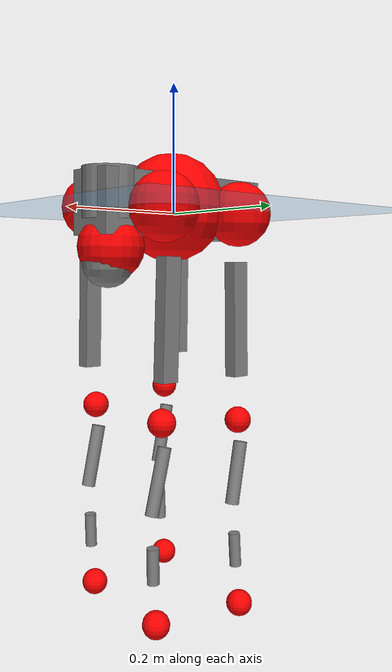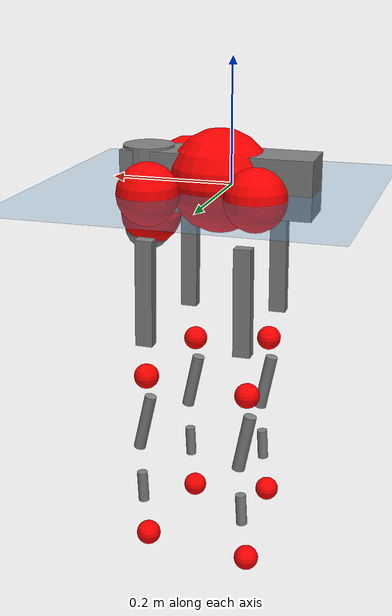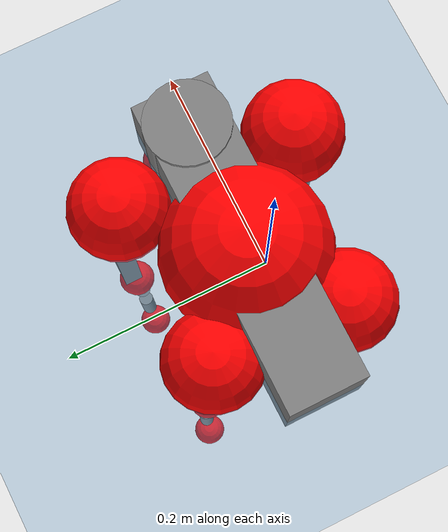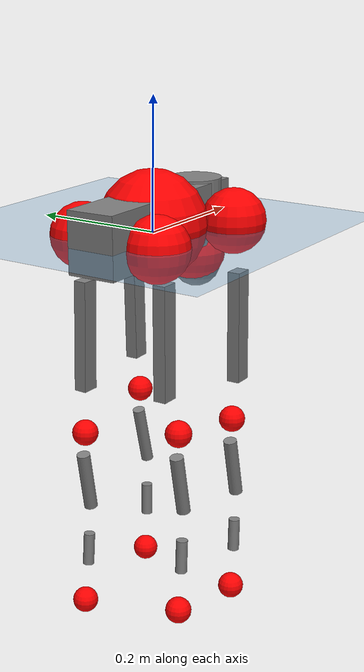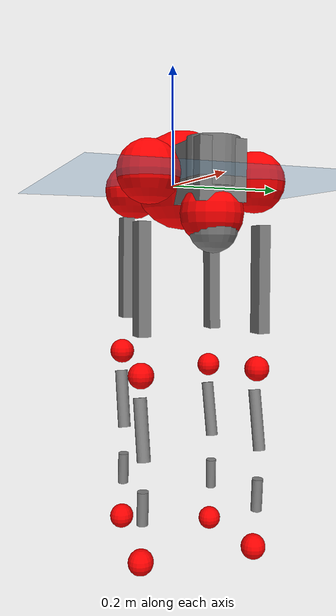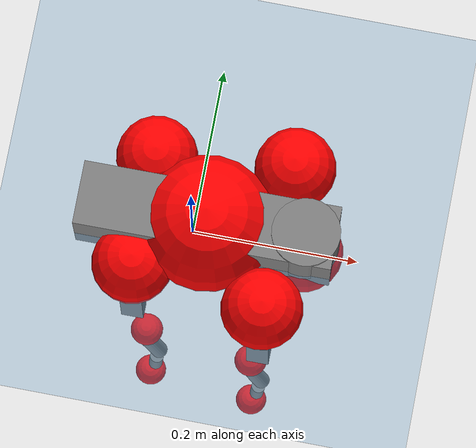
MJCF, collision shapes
<mujoco model="go2">
  <compiler angle="radian" assetdir="assets" balanceinertia="true" inertiafromgeom="false"/>

  <option timestep="0.005" density="1.2" viscosity="2e-05"/>

  <size nkey="1"/>

  <visual>
    <quality shadowsize="8192"/>
    <map shadowclip="0.5"/>
  </visual>

  <default>
    <default class="/">
      <geom contype="0" conaffinity="0" group="1" solref="-1000 -80"/>
      <site size="0.01 0.005 0.005" group="5"/>
      <general forcelimited="true" biastype="affine" gainprm="20" biasprm="0 -20 -0.5"/>
      <default class="go2">
        <joint armature="0.01" damping="0.01" frictionloss="0.2"/>
        <geom condim="1" margin="0.001"/>
        <default class="visual">
          <geom type="mesh" group="2"/>
        </default>
        <default class="collision">
          <geom group="3"/>
          <default class="foot">
            <geom size="0.022 0 0" condim="6" priority="1" friction="0.8 0.02 0.01" solimp="0.015 1 0.022"/>
          </default>
        </default>
        <default class="reward_collision_sphere">
          <geom group="5" rgba="1 0 0 1"/>
        </default>
      </default>
    </default>
  </default>

  <asset>
    <texture type="skybox" colorspace="auto" name="//unnamed_texture_0" builtin="gradient" rgb1="0.95 0.95 0.95" rgb2="0.95 0.95 0.95" width="100" height="600"/>
    <texture type="2d" colorspace="auto" name="texplane" builtin="checker" rgb1="0.345 0.575 0.748" rgb2="0.345 0.575 0.748" markrgb="1 1 1" width="512" height="512"/>
    <material name="MatPlane" class="/" texture="texplane" texuniform="true" texrepeat="2 2" specular="0.9"/>
    <material name="metal" class="/" rgba="0.9 0.95 0.95 1"/>
    <material name="black" class="/" rgba="0 0 0 1"/>
    <material name="white" class="/"/>
    <material name="gray" class="/" rgba="0.671705 0.692426 0.77427 1"/>
    <mesh name="base_0" class="/" file="base_0.obj"/>
    <mesh name="base_1" class="/" file="base_1.obj"/>
    <mesh name="base_2" class="/" file="base_2.obj"/>
    <mesh name="base_3" class="/" file="base_3.obj"/>
    <mesh name="base_4" class="/" file="base_4.obj"/>
    <mesh name="hip_0" class="/" file="hip_0.obj"/>
    <mesh name="hip_1" class="/" file="hip_1.obj"/>
    <mesh name="thigh_0" class="/" file="thigh_0.obj"/>
    <mesh name="thigh_1" class="/" file="thigh_1.obj"/>
    <mesh name="thigh_mirror_0" class="/" file="thigh_mirror_0.obj"/>
    <mesh name="thigh_mirror_1" class="/" file="thigh_mirror_1.obj"/>
    <mesh name="calf_0" class="/" file="calf_0.obj"/>
    <mesh name="calf_1" class="/" file="calf_1.obj"/>
    <mesh name="calf_mirror_0" class="/" file="calf_mirror_0.obj"/>
    <mesh name="calf_mirror_1" class="/" file="calf_mirror_1.obj"/>
    <mesh name="foot" class="/" file="foot.obj"/>
  </asset>

  <worldbody>
    <geom name="floor" class="/" size="100 100 0.125" type="plane" group="0" material="MatPlane"/>
    <light name="toplight_shadow" class="/" pos="0 0 5" dir="0.0990148 0.0990148 -0.990148" type="directional" ambient="0.04 0.04 0.04" diffuse="0.55 0.55 0.55" specular="0.12 0.12 0.12"/>
    <light name="toplight_fill" class="/" pos="0 0 5" dir="0.0990148 0.0990148 -0.990148" type="directional" castshadow="false" ambient="0.04 0.04 0.04" diffuse="0.3 0.3 0.3" specular="0.08 0.08 0.08"/>
    <body name="trunk" childclass="go2" pos="0.0158876 0.0116873 0.00776454" quat="0.999978 -0.0060063 -0.0019689 0.00198502">
      <inertial pos="0.025379 0.0029554 -0.00522369" quat="0.00623544 0.728333 -0.0322601 0.684436" mass="3.63489" diaginertia="0.00147862 0.0119134 0.110443"/>
      <joint name="//unnamed_joint_0" type="free" armature="0" damping="0" frictionloss="0"/>
      <geom name="//unnamed_geom_1" class="visual" material="black" mesh="base_0"/>
      <geom name="//unnamed_geom_2" class="visual" material="black" mesh="base_1"/>
      <geom name="//unnamed_geom_3" class="visual" material="black" mesh="base_2"/>
      <geom name="//unnamed_geom_4" class="visual" material="white" mesh="base_3"/>
      <geom name="//unnamed_geom_5" class="visual" material="gray" mesh="base_4"/>
      <geom name="trunk_1" class="collision" size="0.155365 0.038614 0.0470802" type="box"/>
      <geom name="trunk_2" class="collision" size="0.0412984 0.0371686" pos="0.118834 0 0.01402" type="cylinder"/>
      <geom name="trunk_3" class="collision" size="0.0388205" pos="0.12217 0 -0.0841197"/>
      <geom name="//unnamed_geom_9" class="reward_collision_sphere" size="0.0825968"/>
      <geom name="//unnamed_geom_10" class="reward_collision_sphere" size="0.0495581" pos="0.116749 0 -0.0630898"/>
      <site name="imu" pos="-0.0196962 -0.0369916 0.090138" size="0.00825968"/>
      <camera name="track" pos="0 -1.3179 0" quat="0.707107 0.707107 0 0" mode="trackcom"/>
      <camera name="ego_camera" pos="0.130092 0 0.0630898" quat="-0.5 -0.5 0.5 0.5"/>
      <body name="FL_hip" pos="0.0911655 0.0414486 -0.00785216" quat="0.999968 -0.00203782 -0.00759231 0.00112099">
        <inertial pos="0.0145722 0.0107632 0.00945393" quat="0.499166 0.493437 0.514505 0.492584" mass="0.329569" diaginertia="9.66566e-06 7.24802e-05 0.0018776"/>
        <joint name="FL_hip_joint" pos="0 0 0" axis="0.99976 0.0193389 0.0103178" stiffness="0.03579" range="-0.993918 1.32875" armature="0.00308431" damping="0.0636643" frictionloss="0.0977846"/>
        <geom name="//unnamed_geom_11" class="visual" material="metal" mesh="hip_0"/>
        <geom name="//unnamed_geom_12" class="visual" material="gray" mesh="hip_1"/>
        <geom name="//unnamed_geom_13" class="collision" size="0.0379945 0.0165194" pos="0 0.0527159 0" quat="0.707107 0.707107 0 0" type="cylinder"/>
        <geom name="//unnamed_geom_14" class="reward_collision_sphere" size="0.0495581" pos="0 0.0461264 0"/>
        <body name="FL_thigh" pos="-4.97919e-05 0.0586266 -0.00753456" quat="1 0.000490964 -0.00045795 0.000419358">
          <inertial pos="-0.0173975 -0.0179346 -0.060452" quat="0.832887 0.096016 -0.0228166 0.544573" mass="0.690449" diaginertia="7.73037e-05 0.000664621 0.00517031"/>
          <joint name="FL_thigh_joint" pos="0 0 0" axis="0.0381056 0.99904 -0.0216185" range="-1.30464 3.23839" armature="0.00334425" damping="0.0876506" frictionloss="0.0899816"/>
          <geom name="//unnamed_geom_15" class="visual" material="metal" mesh="thigh_0"/>
          <geom name="//unnamed_geom_16" class="visual" material="gray" mesh="thigh_1"/>
          <geom name="//unnamed_geom_17" class="collision" size="0.0879656 0.0101181 0.0140415" pos="0 0 -0.149312" quat="0.707107 0 0.707107 0" type="box"/>
          <body name="FL_calf" pos="0.000862016 -0.00529257 -0.295877" quat="0.999985 -0.00488388 0.000841128 -0.00243954">
            <inertial pos="-0.00763748 -0.00985827 -0.185918" quat="0.664943 0.0344902 0.0089737 0.746043" mass="0.126352" diaginertia="2.05695e-05 0.000162151 0.000330898"/>
            <joint name="FL_calf_joint" pos="0 0 0" axis="0.0219685 0.999629 -0.0161133" range="-2.66258 -0.563666" armature="0.0127629" damping="0" frictionloss="0.198601"/>
            <geom name="//unnamed_geom_18" class="visual" material="gray" mesh="calf_0"/>
            <geom name="//unnamed_geom_19" class="visual" material="black" mesh="calf_1"/>
            <geom name="FL_calf0" class="collision" size="0.00991162 0.0495581" pos="0.00333569 0 -0.0841197" quat="0.994493 0 -0.104807 0" type="cylinder"/>
            <geom name="//unnamed_geom_21" class="collision" size="0.00908565 0.026844" pos="0.00833922 0 -0.207495" quat="0.999688 0 0.0249974 0" type="cylinder"/>
            <geom name="//unnamed_geom_22" class="visual" pos="0 0 -0.298625" quat="1 0 0 0" material="black" mesh="foot"/>
            <geom name="FL_foot" class="foot" size="0.0143059" pos="-0.000833922 0 -0.298625"/>
            <geom name="//unnamed_geom_24" class="reward_collision_sphere" size="0.0206492"/>
            <geom name="//unnamed_geom_25" class="reward_collision_sphere" size="0.0206492" pos="-0.000833922 0 -0.298625"/>
            <site name="FL_foot" class="foot" pos="-0.000833922 0 -0.298625" size="0.00825968"/>
          </body>
        </body>
      </body>
      <body name="FR_hip" pos="0.0823739 -0.0444666 -0.000381838" quat="0.99999 -0.00153758 6.33775e-05 0.00408208">
        <inertial pos="-0.0151837 -0.00742092 -0.000914587" quat="0.493022 0.50437 0.508826 0.493595" mass="0.253343" diaginertia="1.00378e-05 6.75057e-05 0.00252262"/>
        <joint name="FR_hip_joint" pos="0 0 0" axis="0.999816 0.0189265 -0.00311843" stiffness="0.0454409" range="-1.24701 1.01767" armature="0.0151933" damping="0.0171365" frictionloss="0.03231"/>
        <geom name="//unnamed_geom_26" class="visual" pos="0 -6.47312e-09 -2.77645e-07" quat="4.63268e-05 1 0 0" material="metal" mesh="hip_0"/>
        <geom name="//unnamed_geom_27" class="visual" pos="0 -1.04937e-08 6.86723e-07" quat="4.63268e-05 1 0 0" material="gray" mesh="hip_1"/>
        <geom name="//unnamed_geom_28" class="collision" size="0.0379945 0.0165194" pos="0 -0.0527159 0" quat="0.707107 0.707107 0 0" type="cylinder"/>
        <geom name="//unnamed_geom_29" class="reward_collision_sphere" size="0.0495581" pos="0 -0.0461264 0"/>
        <body name="FR_thigh" pos="-0.00240676 -0.0561461 -0.0144769" quat="0.99997 0.00156959 -0.00448485 -0.00612857">
          <inertial pos="0.0104247 0.0313061 -0.0395111" quat="0.567955 -0.0177772 0.0794079 0.819027" mass="0.859243" diaginertia="8.09985e-05 0.000875522 0.00605382"/>
          <joint name="FR_thigh_joint" pos="0 0 0" axis="0.021634 -0.999741 -0.00700662" stiffness="0.0156627" range="-3.36006 1.72136" armature="0.00836564" damping="0.00650472" frictionloss="0.0972541"/>
          <geom name="//unnamed_geom_30" class="visual" material="metal" mesh="thigh_mirror_0"/>
          <geom name="//unnamed_geom_31" class="visual" material="gray" mesh="thigh_mirror_1"/>
          <geom name="//unnamed_geom_32" class="collision" size="0.0879656 0.0101181 0.0140415" pos="0 0 -0.149312" quat="0.707107 0 0.707107 0" type="box"/>
          <body name="FR_calf" pos="-0.0112446 0.00250424 -0.300454" quat="1 -1.567e-05 1.98342e-05 2.95213e-05">
            <inertial pos="-0.00683064 0.000275844 -0.192025" quat="0.690281 0.00425692 0.000644498 0.723529" mass="0.104543" diaginertia="1.29052e-05 0.000173923 0.000232668"/>
            <joint name="FR_calf_joint" pos="0 0 0" axis="-0.0505053 -0.99787 0.0412902" stiffness="0.0512746" range="0.837425 2.79375" armature="0.00715129" damping="0" frictionloss="0.116876"/>
            <geom name="//unnamed_geom_33" class="visual" material="gray" mesh="calf_mirror_0"/>
            <geom name="//unnamed_geom_34" class="visual" material="black" mesh="calf_mirror_1"/>
            <geom name="FR_calf0" class="collision" size="0.0107376 0.0495581" pos="0.00416961 0 -0.0841197" quat="0.995004 0 -0.0998334 0" type="cylinder"/>
            <geom name="//unnamed_geom_36" class="collision" size="0.00908565 0.026844" pos="0.00833922 0 -0.207495" quat="0.999688 0 0.0249974 0" type="cylinder"/>
            <geom name="//unnamed_geom_37" class="visual" pos="0 0 -0.298625" quat="1 0 0 0" material="black" mesh="foot"/>
            <geom name="FR_foot" class="foot" size="0.016714" pos="-0.000833922 0 -0.298625"/>
            <geom name="//unnamed_geom_39" class="reward_collision_sphere" size="0.0206492"/>
            <geom name="//unnamed_geom_40" class="reward_collision_sphere" size="0.0206492" pos="-0.000833922 0 -0.298625"/>
            <site name="FR_foot" class="foot" pos="-0.000833922 0 -0.298625" size="0.00825968"/>
          </body>
        </body>
      </body>
      <body name="RL_hip" pos="-0.0760275 0.0259557 -0.0101124" quat="0.999961 0.00615429 0.00170536 -0.00608665">
        <inertial pos="-0.0136737 0.00649455 -0.00343118" quat="0.504721 0.497351 0.499854 0.498041" mass="0.345508" diaginertia="1.0903e-05 6.09442e-05 0.00271035"/>
        <joint name="RL_hip_joint" pos="0 0 0" axis="-0.999643 -0.00810292 -0.0254605" range="-0.951969 0.969572" armature="0.00767279" damping="0" frictionloss="0.101883"/>
        <geom name="//unnamed_geom_41" class="visual" pos="8.58121e-09 0 1.68212e-06" quat="4.63268e-05 0 1 0" material="metal" mesh="hip_0"/>
        <geom name="//unnamed_geom_42" class="visual" pos="1.39112e-08 0 1.4918e-06" quat="4.63268e-05 0 1 0" material="gray" mesh="hip_1"/>
        <geom name="//unnamed_geom_43" class="collision" size="0.0379945 0.0165194" pos="0 0.0527159 0" quat="0.707107 0.707107 0 0" type="cylinder"/>
        <geom name="//unnamed_geom_44" class="reward_collision_sphere" size="0.0495581" pos="0 0.0461264 0"/>
        <body name="RL_thigh" pos="0.0152725 0.0546864 -0.0121176" quat="0.99997 0.0059454 0.00394725 -0.00293228">
          <inertial pos="3.9966e-05 -0.00990406 -0.0410746" quat="0.822475 0.155408 -0.0148841 0.546957" mass="0.754201" diaginertia="6.85217e-05 0.000835784 0.00431063"/>
          <joint name="RL_thigh_joint" pos="0 0 0" axis="-0.000154815 0.999998 -0.00203404" range="-0.441769 4.56004" armature="0.0123486" damping="0.0880474" frictionloss="0.224906"/>
          <geom name="//unnamed_geom_45" class="visual" material="metal" mesh="thigh_0"/>
          <geom name="//unnamed_geom_46" class="visual" material="gray" mesh="thigh_1"/>
          <geom name="//unnamed_geom_47" class="collision" size="0.0879656 0.0101181 0.0140415" pos="0 0 -0.149312" quat="0.707107 0 0.707107 0" type="box"/>
          <body name="RL_calf" pos="-0.00685478 -0.0044127 -0.307626" quat="1 -4.22209e-06 0.000312739 -0.000630401">
            <inertial pos="0.00202294 -1.12764e-06 -0.208342" quat="0.710666 0.00132454 -0.00464082 0.703513" mass="0.137031" diaginertia="1.87097e-05 0.000175421 0.00029394"/>
            <joint name="RL_calf_joint" pos="0 0 0" axis="0.00563013 0.999982 0.00190613" stiffness="0.0127388" range="-2.60469 -0.858892" armature="0.0123986" damping="0.0760608" frictionloss="0.17938"/>
            <geom name="//unnamed_geom_48" class="visual" material="gray" mesh="calf_0"/>
            <geom name="//unnamed_geom_49" class="visual" material="black" mesh="calf_1"/>
            <geom name="RL_calf0" class="collision" size="0.0107376 0.0495581" pos="0.00416961 0 -0.0841197" quat="0.995004 0 -0.0998334 0" type="cylinder"/>
            <geom name="//unnamed_geom_51" class="collision" size="0.00908565 0.026844" pos="0.00833922 0 -0.207495" quat="0.999688 0 0.0249974 0" type="cylinder"/>
            <geom name="//unnamed_geom_52" class="visual" pos="0 0 -0.298625" quat="1 0 0 0" material="black" mesh="foot"/>
            <geom name="RL_foot" class="foot" size="0.0102668" pos="-0.000833922 0 -0.298625"/>
            <geom name="//unnamed_geom_54" class="reward_collision_sphere" size="0.0206492"/>
            <geom name="//unnamed_geom_55" class="reward_collision_sphere" size="0.0206492" pos="-0.000833922 0 -0.298625"/>
            <site name="RL_foot" class="foot" pos="-0.000833922 0 -0.298625" size="0.00825968"/>
          </body>
        </body>
      </body>
      <body name="RR_hip" pos="-0.0802082 -0.0151647 -0.0129718" quat="0.999982 -0.00298707 0.00498029 0.00127819">
        <inertial pos="0.00029892 -0.0142638 0.000859226" quat="0.508319 0.432218 0.524336 0.529029" mass="0.392153" diaginertia="9.9114e-06 6.52548e-05 0.00290921"/>
        <joint name="RR_hip_joint" pos="0 0 0" axis="-0.999727 0.0102326 -0.0210123" range="-1.13824 1.03271" armature="0.00100524" damping="0" frictionloss="0.282149"/>
        <geom name="//unnamed_geom_56" class="visual" pos="-8.57283e-09 -6.47312e-09 1.95976e-06" quat="2.14617e-09 4.63268e-05 4.63268e-05 -1" material="metal" mesh="hip_0"/>
        <geom name="//unnamed_geom_57" class="visual" pos="-1.39319e-08 -1.04937e-08 8.05073e-07" quat="2.14617e-09 4.63268e-05 4.63268e-05 -1" material="gray" mesh="hip_1"/>
        <geom name="//unnamed_geom_58" class="collision" size="0.0379945 0.0165194" pos="0 -0.0527159 0" quat="0.707107 0.707107 0 0" type="cylinder"/>
        <geom name="//unnamed_geom_59" class="reward_collision_sphere" size="0.0495581" pos="0 -0.0461264 0"/>
        <body name="RR_thigh" pos="-0.0013922 -0.0582039 0.0133899" quat="0.999991 0.00185512 -0.00184133 -0.00337042">
          <inertial pos="-0.00193465 0.0236612 -0.0481133" quat="0.550153 -0.0200111 0.0827042 0.830717" mass="0.789461" diaginertia="9.03301e-05 0.000801046 0.00617375"/>
          <joint name="RR_thigh_joint" pos="0 0 0" axis="-0.043114 -0.998978 -0.0136019" stiffness="0.0571258" range="-4.23988 0.313581" armature="0.00461753" damping="0.0310338" frictionloss="0.215111"/>
          <geom name="//unnamed_geom_60" class="visual" material="metal" mesh="thigh_mirror_0"/>
          <geom name="//unnamed_geom_61" class="visual" material="gray" mesh="thigh_mirror_1"/>
          <geom name="//unnamed_geom_62" class="collision" size="0.0879656 0.0101181 0.0140415" pos="0 0 -0.149312" quat="0.707107 0 0.707107 0" type="box"/>
          <body name="RR_calf" pos="0.0180002 -0.0122631 -0.29536" quat="0.999997 0.00156252 -0.000292693 -0.00178499">
            <inertial pos="-0.0145922 -0.000445517 -0.208062" quat="0.679662 0.0160584 0.00180303 0.733347" mass="0.129292" diaginertia="1.9835e-05 0.000251692 0.000297645"/>
            <joint name="RR_calf_joint" pos="0 0 0" axis="0.0123697 -0.999715 -0.0204244" range="0.596356 2.37238" armature="0.0141704" damping="0" frictionloss="0.113761"/>
            <geom name="//unnamed_geom_63" class="visual" material="gray" mesh="calf_mirror_0"/>
            <geom name="//unnamed_geom_64" class="visual" material="black" mesh="calf_mirror_1"/>
            <geom name="RR_calf0" class="collision" size="0.0107376 0.0495581" pos="0.00416961 0 -0.0841197" quat="0.995004 0 -0.0998334 0" type="cylinder"/>
            <geom name="//unnamed_geom_66" class="collision" size="0.00908565 0.026844" pos="0.00833922 0 -0.207495" quat="0.999688 0 0.0249974 0" type="cylinder"/>
            <geom name="//unnamed_geom_67" class="visual" pos="0 0 -0.298625" quat="1 0 0 0" material="black" mesh="foot"/>
            <geom name="RR_foot" class="foot" size="0.0203573" pos="-0.000833922 0 -0.298625"/>
            <geom name="//unnamed_geom_69" class="reward_collision_sphere" size="0.0206492"/>
            <geom name="//unnamed_geom_70" class="reward_collision_sphere" size="0.0206492" pos="-0.000833922 0 -0.298625"/>
            <site name="RR_foot" class="foot" pos="-0.000833922 0 -0.298625" size="0.00825968"/>
          </body>
        </body>
      </body>
    </body>
  </worldbody>

  <contact>
    <pair class="/" geom1="floor" geom2="FL_foot" name="//unnamed_contact_0"/>
    <pair class="/" geom1="floor" geom2="FR_foot" name="//unnamed_contact_1"/>
    <pair class="/" geom1="floor" geom2="RL_foot" name="//unnamed_contact_2"/>
    <pair class="/" geom1="floor" geom2="RR_foot" name="//unnamed_contact_3"/>
  </contact>

  <actuator>
    <general name="FL_hip" class="/" joint="FL_hip_joint" forcerange="-21.493 21.493" gainprm="16.781" biasprm="0 -16.781 -0.401868"/>
    <general name="FL_thigh" class="/" joint="FL_thigh_joint" forcerange="-26.5047 26.5047" gainprm="16.781" biasprm="0 -16.781 -0.401868"/>
    <general name="FL_calf" class="/" joint="FL_calf_joint" forcerange="-39.057 39.057" gainprm="16.781" biasprm="0 -16.781 -0.401868"/>
    <general name="FR_hip" class="/" joint="FR_hip_joint" forcerange="-7.15377 7.15377" gainprm="16.781" biasprm="0 -16.781 -0.401868"/>
    <general name="FR_thigh" class="/" joint="FR_thigh_joint" forcerange="-19.2681 19.2681" gainprm="16.781" biasprm="0 -16.781 -0.401868"/>
    <general name="FR_calf" class="/" joint="FR_calf_joint" forcerange="-54.8466 54.8466" gainprm="16.781" biasprm="0 -16.781 -0.401868"/>
    <general name="RL_hip" class="/" joint="RL_hip_joint" forcerange="-22.2248 22.2248" gainprm="16.781" biasprm="0 -16.781 -0.401868"/>
    <general name="RL_thigh" class="/" joint="RL_thigh_joint" forcerange="-22.3265 22.3265" gainprm="16.781" biasprm="0 -16.781 -0.401868"/>
    <general name="RL_calf" class="/" joint="RL_calf_joint" forcerange="-34.1906 34.1906" gainprm="16.781" biasprm="0 -16.781 -0.401868"/>
    <general name="RR_hip" class="/" joint="RR_hip_joint" forcerange="-16.8269 16.8269" gainprm="16.781" biasprm="0 -16.781 -0.401868"/>
    <general name="RR_thigh" class="/" joint="RR_thigh_joint" forcerange="-24.5397 24.5397" gainprm="16.781" biasprm="0 -16.781 -0.401868"/>
    <general name="RR_calf" class="/" joint="RR_calf_joint" forcerange="-16.5689 16.5689" gainprm="16.781" biasprm="0 -16.781 -0.401868"/>
  </actuator>

  <sensor>
    <gyro site="imu" name="imu_angular_velocity"/>
    <velocimeter site="imu" name="imu_linear_velocity"/>
    <framelinvel objtype="site" objname="FL_foot" name="FL_foot_global_linear_velocity"/>
    <framelinvel objtype="site" objname="FR_foot" name="FR_foot_global_linear_velocity"/>
    <framelinvel objtype="site" objname="RL_foot" name="RL_foot_global_linear_velocity"/>
    <framelinvel objtype="site" objname="RR_foot" name="RR_foot_global_linear_velocity"/>
  </sensor>

  <keyframe>
    <key name="home" qpos="0 0 0.325 1 0 0 0 0.1 0.8 -1.5 -0.1 -0.8 1.5 -0.1 0.8 -1.5 0.1 -0.8 1.5"/>
  </keyframe>
</mujoco>
